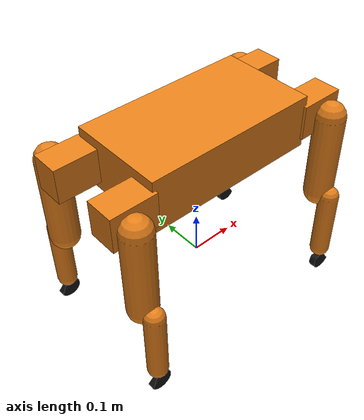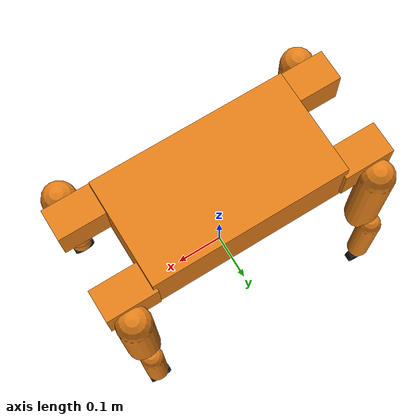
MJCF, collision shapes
<mujoco model="pochi">
  <compiler angle="radian" autolimits="true" meshdir="meshes"/>
  <option timestep="0.005" iterations="50" solver="Newton" cone="elliptic"/>

  <visual>
    <global offwidth="1920" offheight="1080"/>
    <quality shadowsize="4096"/>
  </visual>

  <default>
    <default class="pochi">
      <joint armature="0.01" damping="0.2"/>
      <geom condim="3" friction="0.8 0.02 0.001"/>
      <position kp="60" kv="1.5" forcerange="-17 17"/>
      <default class="visual">
        <geom type="mesh" contype="0" conaffinity="0" group="2" rgba="0.35 0.37 0.4 1"/>
      </default>
      <default class="collision">
        <geom group="3" rgba="0.9 0.5 0.1 0.3"/>
      </default>
      <default class="foot">
        <geom group="3" priority="1" rgba="0.08 0.08 0.08 1"/>
      </default>
    </default>
  </default>

  <asset>
    <mesh name="base_link" file="base_link.obj"/>
    <mesh name="FL_hip" file="FL_hip.obj"/>
    <mesh name="FL_thigh" file="FL_thigh.obj"/>
    <mesh name="FL_shank" file="FL_shank.obj"/>
    <mesh name="FL_foot_pad" file="FL_foot_pad.obj"/>
    <mesh name="FR_hip" file="FR_hip.obj"/>
    <mesh name="FR_thigh" file="FR_thigh.obj"/>
    <mesh name="FR_shank" file="FR_shank.obj"/>
    <mesh name="FR_foot_pad" file="FR_foot_pad.obj"/>
    <mesh name="RL_hip" file="RL_hip.obj"/>
    <mesh name="RL_thigh" file="RL_thigh.obj"/>
    <mesh name="RL_shank" file="RL_shank.obj"/>
    <mesh name="RL_foot_pad" file="RL_foot_pad.obj"/>
    <mesh name="RR_hip" file="RR_hip.obj"/>
    <mesh name="RR_thigh" file="RR_thigh.obj"/>
    <mesh name="RR_shank" file="RR_shank.obj"/>
    <mesh name="RR_foot_pad" file="RR_foot_pad.obj"/>
  </asset>

  <worldbody>
    <body name="base_link" pos="0 0 0.32" childclass="pochi">
      <freejoint name="floating_base_joint"/>
      <inertial pos="0.000656279 3.74735e-05 7.81419e-06" mass="5.73591"
        fullinertia="0.0166213 0.0718404 0.0817155 -3.14998e-05 -1.42835e-05 -4.56139e-06"/>
      <geom class="visual" mesh="base_link"/>
      <geom name="base_collision" class="collision" type="box"
        pos="0 0 0.001" size="0.1985 0.10925 0.06"/>
      <site name="imu" pos="0 0 0" size="0.01" rgba="0 0.4 1 1"/>

      <body name="FL_hip" pos="0.2545 0.07 0">
        <joint name="FL_hip_roll" axis="-1 0 0" range="-0.7 0.7"/>
        <inertial pos="-0.00830334 0.0211765 7.05912e-09" mass="0.516971"
          fullinertia="0.000306708 0.000536387 0.000446575 -2.51638e-05 0 0"/>
        <geom class="visual" mesh="FL_hip"/>
        <geom name="FL_hip_collision" class="collision" type="box"
          pos="-0.011883 0.014013 0" size="0.051117 0.031987 0.03925"/>
        <body name="FL_thigh" pos="0 0 0">
          <joint name="FL_hip_pitch" axis="0 -1 0" range="-1.6 1.6"/>
          <inertial pos="5.91198e-08 0.0635964 -0.153348" mass="0.652488"
            fullinertia="0.00376231 0.00385745 0.000334673 1.90614e-07 0 1.15467e-05"/>
          <geom class="visual" mesh="FL_thigh"/>
          <geom name="FL_thigh_collision" class="collision" type="capsule"
            fromto="0 0.0630007 0 0 0.0630007 -0.2"
            size="0.03373"/>
          <body name="FL_shank" pos="0 0 -0.2">
            <joint name="FL_knee" axis="0 -1 0" range="-2.4 2.4"/>
            <inertial pos="0.00558664 0.0967798 -0.0810399" mass="0.127282"
              fullinertia="0.000799557 0.000813549 2.4104e-05 -8.68651e-07 1.83682e-05 1.25893e-05"/>
            <geom class="visual" mesh="FL_shank"/>
            <geom name="FL_shank_collision" class="collision" type="capsule"
              fromto="0 0.095001 0 0 0.095001 -0.162335"
              size="0.02277"/>
            <body name="FL_foot" pos="0 0.098001 -0.225017">
              <inertial pos="0 0 0" mass="1e-6" diaginertia="1e-9 1e-9 1e-9"/>
              <geom name="FL_foot_collision" class="foot" type="mesh"
                mesh="FL_foot_pad"/>
              <site name="FL_foot_site" size="0.012" rgba="1 1 1 0"/>
            </body>
          </body>
        </body>
      </body>
      <body name="FR_hip" pos="0.2545 -0.07 0">
        <joint name="FR_hip_roll" axis="-1 0 0" range="-0.7 0.7"/>
        <inertial pos="-0.00830319 -0.021177 -4.72639e-07" mass="0.516971"
          fullinertia="0.000306709 0.000536389 0.000446577 2.51667e-05 1.50216e-09 0"/>
        <geom class="visual" mesh="FR_hip"/>
        <geom name="FR_hip_collision" class="collision" type="box"
          pos="-0.011883 -0.014013 -1e-06" size="0.051117 0.031987 0.03925"/>
        <body name="FR_thigh" pos="0 0 0">
          <joint name="FR_hip_pitch" axis="0 1 0" range="-1.6 1.6"/>
          <inertial pos="-2.93123e-08 -0.0635959 -0.153349" mass="0.652488"
            fullinertia="0.00376229 0.00385743 0.000334673 1.90661e-07 -2.21658e-09 -1.15231e-05"/>
          <geom class="visual" mesh="FR_thigh"/>
          <geom name="FR_thigh_collision" class="collision" type="capsule"
            fromto="0 -0.0630004 0 0 -0.0630004 -0.2"
            size="0.03373"/>
          <body name="FR_shank" pos="0 0 -0.2">
            <joint name="FR_knee" axis="0 1 0" range="-2.4 2.4"/>
            <inertial pos="0.00557371 -0.0967238 -0.0810409" mass="0.127282"
              fullinertia="0.000799648 0.000813551 2.41812e-05 9.05141e-07 1.82459e-05 -1.31693e-05"/>
            <geom class="visual" mesh="FR_shank"/>
            <geom name="FR_shank_collision" class="collision" type="capsule"
              fromto="0 -0.0945002 0 0 -0.0945002 -0.16216"
              size="0.02295"/>
            <body name="FR_foot" pos="0 -0.097956 -0.225034">
              <inertial pos="0 0 0" mass="1e-6" diaginertia="1e-9 1e-9 1e-9"/>
              <geom name="FR_foot_collision" class="foot" type="mesh"
                mesh="FR_foot_pad"/>
              <site name="FR_foot_site" size="0.012" rgba="1 1 1 0"/>
            </body>
          </body>
        </body>
      </body>
      <body name="RL_hip" pos="-0.2545 0.07 0">
        <joint name="RL_hip_roll" axis="1 0 0" range="-0.7 0.7"/>
        <inertial pos="0.00830335 0.0211767 -7.40265e-07" mass="0.516971"
          fullinertia="0.000306709 0.000536388 0.000446576 2.51646e-05 -2.21811e-09 0"/>
        <geom class="visual" mesh="RL_hip"/>
        <geom name="RL_hip_collision" class="collision" type="box"
          pos="0.011883 0.014013 -1e-06" size="0.051117 0.031987 0.03925"/>
        <body name="RL_thigh" pos="0 0 0">
          <joint name="RL_hip_pitch" axis="0 -1 0" range="-1.6 1.6"/>
          <inertial pos="6.03251e-08 0.0635933 -0.153349" mass="0.652488"
            fullinertia="0.00376227 0.00385743 0.000334648 1.90348e-07 3.38017e-09 1.18942e-05"/>
          <geom class="visual" mesh="RL_thigh"/>
          <geom name="RL_thigh_collision" class="collision" type="capsule"
            fromto="0 0.0630008 0 0 0.0630008 -0.2"
            size="0.03372"/>
          <body name="RL_shank" pos="0 0 -0.2">
            <joint name="RL_knee" axis="0 -1 0" range="-2.4 2.4"/>
            <inertial pos="-0.00557406 0.096725 -0.0810409" mass="0.127282"
              fullinertia="0.000799648 0.000813551 2.41813e-05 9.0507e-07 -1.82482e-05 1.31689e-05"/>
            <geom class="visual" mesh="RL_shank"/>
            <geom name="RL_shank_collision" class="collision" type="capsule"
              fromto="0 0.0945014 0 0 0.0945014 -0.16216"
              size="0.02295"/>
            <body name="RL_foot" pos="0 0.098042 -0.225022">
              <inertial pos="0 0 0" mass="1e-6" diaginertia="1e-9 1e-9 1e-9"/>
              <geom name="RL_foot_collision" class="foot" type="mesh"
                mesh="RL_foot_pad"/>
              <site name="RL_foot_site" size="0.012" rgba="1 1 1 0"/>
            </body>
          </body>
        </body>
      </body>
      <body name="RR_hip" pos="-0.2545 -0.07 0">
        <joint name="RR_hip_roll" axis="1 0 0" range="-0.7 0.7"/>
        <inertial pos="0.00830324 -0.021177 3.21201e-07" mass="0.516971"
          fullinertia="0.000306709 0.000536389 0.000446577 -2.51663e-05 1.22396e-09 0"/>
        <geom class="visual" mesh="RR_hip"/>
        <geom name="RR_hip_collision" class="collision" type="box"
          pos="0.011883 -0.014013 0" size="0.051117 0.031987 0.03925"/>
        <body name="RR_thigh" pos="0 0 0">
          <joint name="RR_hip_pitch" axis="0 1 0" range="-1.6 1.6"/>
          <inertial pos="-4.31856e-08 -0.0634762 -0.153348" mass="0.652488"
            fullinertia="0.0037621 0.00385743 0.000334484 1.90559e-07 -1.78207e-09 -2.35265e-05"/>
          <geom class="visual" mesh="RR_thigh"/>
          <geom name="RR_thigh_collision" class="collision" type="capsule"
            fromto="0 -0.0619137 0 0 -0.0619137 -0.2"
            size="0.03311"/>
          <body name="RR_shank" pos="0 0 -0.2">
            <joint name="RR_knee" axis="0 1 0" range="-2.4 2.4"/>
            <inertial pos="-0.0055674 -0.0971951 -0.0810412" mass="0.127282"
              fullinertia="0.000799422 0.000813549 2.39515e-05 -6.49003e-07 -1.8185e-05 -8.34912e-06"/>
            <geom class="visual" mesh="RR_shank"/>
            <geom name="RR_shank_collision" class="collision" type="capsule"
              fromto="0 -0.0960155 0 0 -0.0960155 -0.162475"
              size="0.02263"/>
            <body name="RR_foot" pos="0 -0.097959 -0.225025">
              <inertial pos="0 0 0" mass="1e-6" diaginertia="1e-9 1e-9 1e-9"/>
              <geom name="RR_foot_collision" class="foot" type="mesh"
                mesh="RR_foot_pad"/>
              <site name="RR_foot_site" size="0.012" rgba="1 1 1 0"/>
            </body>
          </body>
        </body>
      </body>
    </body>
  </worldbody>

  <contact>
    <exclude body1="base_link" body2="FL_thigh"/>
    <exclude body1="base_link" body2="FR_thigh"/>
    <exclude body1="base_link" body2="RL_thigh"/>
    <exclude body1="base_link" body2="RR_thigh"/>
  </contact>

  <actuator>
    <position class="pochi" name="FL_hip_roll_act" joint="FL_hip_roll" ctrlrange="-0.7 0.7"/>
    <position class="pochi" name="FL_hip_pitch_act" joint="FL_hip_pitch" ctrlrange="-1.6 1.6"/>
    <position class="pochi" name="FL_knee_act" joint="FL_knee" ctrlrange="-2.4 2.4"/>
    <position class="pochi" name="FR_hip_roll_act" joint="FR_hip_roll" ctrlrange="-0.7 0.7"/>
    <position class="pochi" name="FR_hip_pitch_act" joint="FR_hip_pitch" ctrlrange="-1.6 1.6"/>
    <position class="pochi" name="FR_knee_act" joint="FR_knee" ctrlrange="-2.4 2.4"/>
    <position class="pochi" name="RL_hip_roll_act" joint="RL_hip_roll" ctrlrange="-0.7 0.7"/>
    <position class="pochi" name="RL_hip_pitch_act" joint="RL_hip_pitch" ctrlrange="-1.6 1.6"/>
    <position class="pochi" name="RL_knee_act" joint="RL_knee" ctrlrange="-2.4 2.4"/>
    <position class="pochi" name="RR_hip_roll_act" joint="RR_hip_roll" ctrlrange="-0.7 0.7"/>
    <position class="pochi" name="RR_hip_pitch_act" joint="RR_hip_pitch" ctrlrange="-1.6 1.6"/>
    <position class="pochi" name="RR_knee_act" joint="RR_knee" ctrlrange="-2.4 2.4"/>
  </actuator>

  <sensor>
    <framequat name="imu_quat" objtype="site" objname="imu"/>
    <gyro name="imu_gyro" site="imu"/>
    <accelerometer name="imu_accel" site="imu"/>
    <velocimeter name="imu_vel" site="imu"/>
    <touch name="FL_foot_touch" site="FL_foot_site"/>
    <touch name="FR_foot_touch" site="FR_foot_site"/>
    <touch name="RL_foot_touch" site="RL_foot_site"/>
    <touch name="RR_foot_touch" site="RR_foot_site"/>
  </sensor>
</mujoco>
